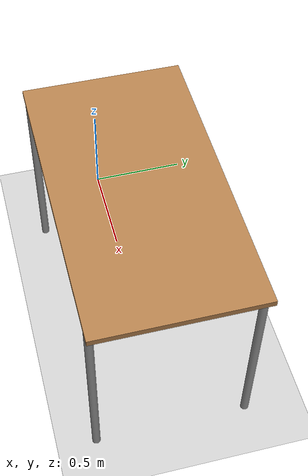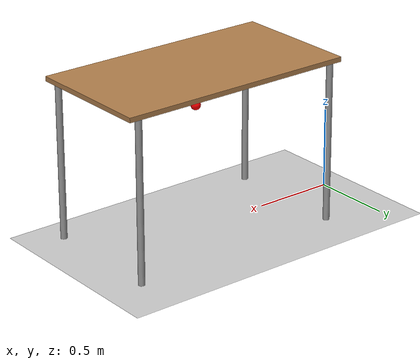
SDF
<?xml version="1.0" ?>
<sdf version="1.5">
  <world name="default">
    <include>
      <uri>model://sun</uri>
    </include>
    <include>
      <uri>model://ground_plane</uri>
    </include>
    <include>
      <uri>model://table</uri>
      <pose>1 0 0 0 0 0</pose>
    </include>
    <include>
      <uri>model://red_ball</uri>
      <pose>1 0 0.75 0 0 0</pose>
    </include>
  </world>
</sdf>

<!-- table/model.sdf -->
<sdf version="1.5">
  <model name="table">
    <static>true</static>
    <link name="link">
      <collision name="surface">
        <pose>0 0 1.0 0 0 0</pose>
        <geometry>
          <box>
            <size>1.5 0.8 0.03</size>
          </box>
        </geometry>
        <surface>
          <friction>
            <ode>
              <mu>0.6</mu>
              <mu2>0.6</mu2>
            </ode>
          </friction>
        </surface>
      </collision>
      <visual name="visual1">
        <pose>0 0 1.0 0 0 0</pose>
        <geometry>
          <box>
            <size>1.5 0.8 0.03</size>
          </box>
        </geometry>
        <material>
          <script>
            <uri>model://media/materials/scripts/gazebo.material</uri>
            <name>Gazebo/Wood</name>
          </script>
        </material>
      </visual>
      <collision name="front_left_leg">
        <pose>0.68 0.38 0.5 0 0 0</pose>
        <geometry>
          <cylinder>
            <radius>0.02</radius>
            <length>1.0</length>
          </cylinder>
        </geometry>
      </collision>
      <visual name="front_left_leg">
        <pose>0.68 0.38 0.5 0 0 0</pose>
        <geometry>
          <cylinder>
            <radius>0.02</radius>
            <length>1.0</length>
          </cylinder>
        </geometry>
        <material>
          <script>
            <uri>model://media/materials/scripts/gazebo.material</uri>
            <name>Gazebo/Grey</name>
          </script>
        </material>
      </visual>
      <collision name="front_right_leg">
        <pose>0.68 -0.38 0.5 0 0 0</pose>
        <geometry>
          <cylinder>
            <radius>0.02</radius>
            <length>1.0</length>
          </cylinder>
        </geometry>
      </collision>
      <visual name="front_right_leg">
        <pose>0.68 -0.38 0.5 0 0 0</pose>
        <geometry>
          <cylinder>
            <radius>0.02</radius>
            <length>1.0</length>
          </cylinder>
        </geometry>
        <material>
          <script>
            <uri>model://media/materials/scripts/gazebo.material</uri>
            <name>Gazebo/Grey</name>
          </script>
        </material>
      </visual>
      <collision name="back_right_leg">
        <pose>-0.68 -0.38 0.5 0 0 0</pose>
        <geometry>
          <cylinder>
            <radius>0.02</radius>
            <length>1.0</length>
          </cylinder>
        </geometry>
      </collision>
      <visual name="back_right_leg">
        <pose>-0.68 -0.38 0.5 0 0 0</pose>
        <geometry>
          <cylinder>
            <radius>0.02</radius>
            <length>1.0</length>
          </cylinder>
        </geometry>
        <material>
          <script>
            <uri>model://media/materials/scripts/gazebo.material</uri>
            <name>Gazebo/Grey</name>
          </script>
        </material>
      </visual>
      <collision name="back_left_leg">
        <pose>-0.68 0.38 0.5 0 0 0</pose>
        <geometry>
          <cylinder>
            <radius>0.02</radius>
            <length>1.0</length>
          </cylinder>
        </geometry>
      </collision>
      <visual name="back_left_leg">
        <pose>-0.68 0.38 0.5 0 0 0</pose>
        <geometry>
          <cylinder>
            <radius>0.02</radius>
            <length>1.0</length>
          </cylinder>
        </geometry>
        <material>
          <script>
            <uri>model://media/materials/scripts/gazebo.material</uri>
            <name>Gazebo/Grey</name>
          </script>
        </material>
      </visual>
    </link>
  </model>
</sdf>

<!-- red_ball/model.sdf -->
<sdf version='1.6'>
  <model name='red_ball'>
    <link name='link_3'>
      <inertial>
        <mass>0.03</mass>
        <inertia>
          <ixx>0.166667</ixx>
          <ixy>0</ixy>
          <ixz>0</ixz>
          <iyy>0.166667</iyy>
          <iyz>0</iyz>
          <izz>0.166667</izz>
        </inertia>
        <pose frame=''>0 0 0 0 -0 0</pose>
      </inertial>
      <pose frame=''>0 0 0.03 0 -0 0</pose>
      <gravity>1</gravity>
      <self_collide>0</self_collide>
      <kinematic>0</kinematic>
      <enable_wind>0</enable_wind>
      <visual name='visual'>
        <pose frame=''>0 0 0 0 -0 0</pose>
        <geometry>
          <sphere>
            <radius>0.03</radius>
          </sphere>
        </geometry>
        <material>
          <lighting>1</lighting>
          <script>
            <uri>file://media/materials/scripts/gazebo.material</uri>
            <name>Gazebo/Grey</name>
          </script>
          <shader type='pixel'>
            <normal_map>__default__</normal_map>
          </shader>
          <ambient>1 0 0 0</ambient>
          <diffuse>0.7 0.7 0.7 1</diffuse>
          <specular>0.01 0.01 0.01 1</specular>
          <emissive>0 0 0 1</emissive>
        </material>
        <transparency>0</transparency>
        <cast_shadows>1</cast_shadows>
      </visual>
      <collision name='collision'>
        <laser_retro>0</laser_retro>
        <max_contacts>10</max_contacts>
        <pose frame=''>0 0 0 0 -0 0</pose>
        <geometry>
          <box>
            <size>0.06 0.06 0.06</size>
          </box>
        </geometry>
        <surface>
          <friction>
            <ode>
              <mu>1</mu>
              <mu2>1</mu2>
              <fdir1>0 0 0</fdir1>
              <slip1>0</slip1>
              <slip2>0</slip2>
            </ode>
            <torsional>
              <coefficient>1</coefficient>
              <patch_radius>0</patch_radius>
              <surface_radius>0</surface_radius>
              <use_patch_radius>1</use_patch_radius>
              <ode>
                <slip>0</slip>
              </ode>
            </torsional>
          </friction>
          <bounce>
            <restitution_coefficient>0</restitution_coefficient>
            <threshold>1e+06</threshold>
          </bounce>
          <contact>
            <collide_without_contact>0</collide_without_contact>
            <collide_without_contact_bitmask>1</collide_without_contact_bitmask>
            <collide_bitmask>1</collide_bitmask>
            <ode>
              <soft_cfm>0</soft_cfm>
              <soft_erp>0.2</soft_erp>
              <kp>1e+13</kp>
              <kd>1</kd>
              <max_vel>0.01</max_vel>
              <min_depth>0</min_depth>
            </ode>
            <bullet>
              <split_impulse>1</split_impulse>
              <split_impulse_penetration_threshold>-0.01</split_impulse_penetration_threshold>
              <soft_cfm>0</soft_cfm>
              <soft_erp>0.2</soft_erp>
              <kp>1e+13</kp>
              <kd>1</kd>
            </bullet>
          </contact>
        </surface>
      </collision>
    </link>
    <static>0</static>
    <allow_auto_disable>1</allow_auto_disable>
  </model>
</sdf>
